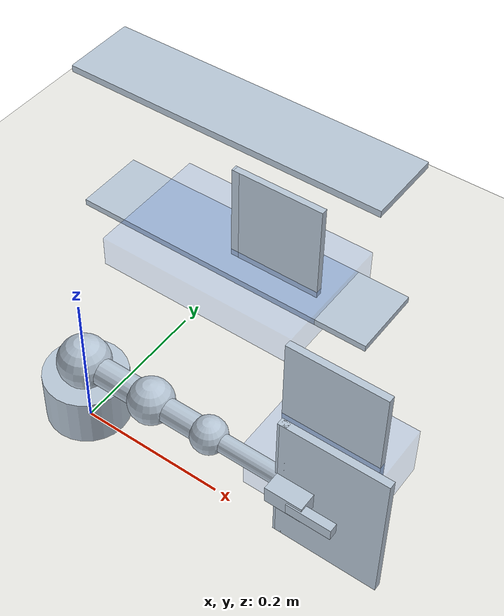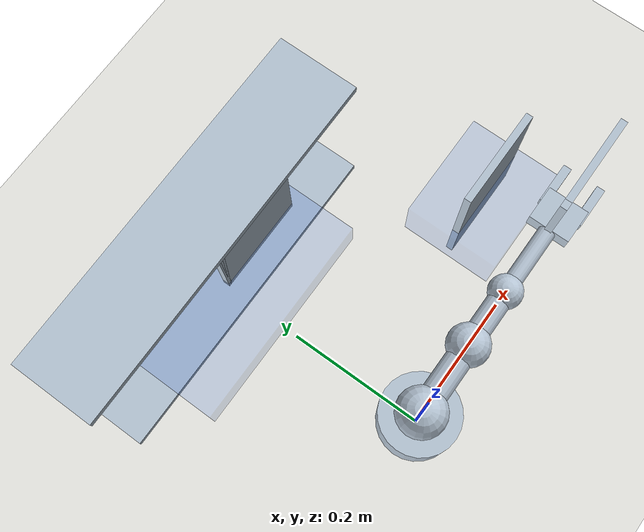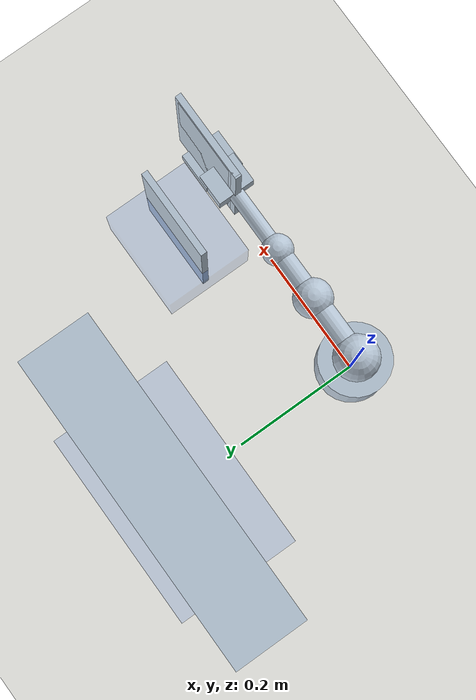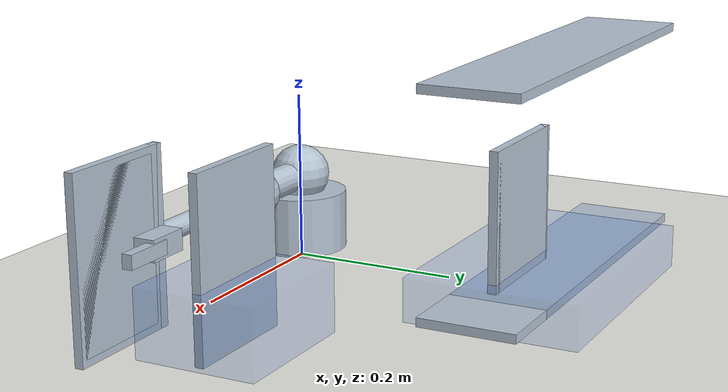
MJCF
<mujoco model="km1_like_arm">
  <compiler angle="degree" coordinate="local"/>

  <option timestep="0.002" gravity="0 0 -9.81"/>

  <default>
    <joint limited="true" damping="0.25" armature="0.01"/>
    <geom contype="1" conaffinity="1" rgba="0.72 0.78 0.84 1"/>
    <site size="0.012" rgba="0.1 0.6 1 1"/>
  </default>

  <asset>
    <material name="base_mat" rgba="0.18 0.20 0.23 1"/>
    <material name="link_a" rgba="0.36 0.62 0.82 1"/>
    <material name="link_b" rgba="0.88 0.70 0.32 1"/>
    <material name="gripper_mat" rgba="0.22 0.22 0.24 1"/>
    <material name="book_mat" rgba="0.78 0.12 0.16 1"/>
    <material name="page_mat" rgba="0.96 0.92 0.78 1"/>
    <material name="shelf_mat" rgba="0.62 0.42 0.24 1"/>
    <material name="workspace_mat" rgba="0.1 0.7 0.3 0.18"/>
  </asset>

  <worldbody>
    <geom name="floor" type="plane" size="0.8 0.8 0.01" rgba="0.92 0.92 0.90 1"/>
    <geom name="return_bin_hint" type="box" pos="0 0.32 0.025" size="0.16 0.10 0.025"
          rgba="0.20 0.42 0.84 0.18" contype="0" conaffinity="0"/>
    <geom name="side_return_bin_hint" type="box" pos="0.30 0.10 0.0385" size="0.08 0.07 0.0385"
          rgba="0.20 0.42 0.84 0.18" contype="0" conaffinity="0"/>
    <geom name="return_book_cover" type="box" pos="0.30 0.10 0.100" euler="0 0 90" size="0.005 0.070 0.100"
          material="book_mat" contype="0" conaffinity="0"/>
    <geom name="return_book_pages" type="box" pos="0.304 0.10 0.100" euler="0 0 90" size="0.004 0.060 0.092"
          material="page_mat" contype="0" conaffinity="0"/>
    <geom name="shelf_platform_low" type="box" pos="0 0.33 0.035" size="0.24 0.055 0.005"
          material="shelf_mat" contype="0" conaffinity="0"/>
    <geom name="shelf_platform_high" type="box" pos="0 0.33 0.275" size="0.24 0.055 0.005"
          material="shelf_mat" contype="0" conaffinity="0"/>
    <body name="base" pos="0 0 0.048">
      <geom name="base_geom" type="cylinder" size="0.055 0.035" material="base_mat"/>
      <joint name="base_yaw" type="hinge" axis="0 0 1" range="-135 135"/>

      <body name="shoulder" pos="0 0 0.055">
        <geom name="shoulder_geom" type="sphere" size="0.035" material="base_mat"/>
        <joint name="shoulder_pitch" type="hinge" axis="0 1 0" range="-120 120"/>
        <geom name="upper_arm" type="capsule" fromto="0 0 0 0.105 0 0" size="0.018" material="link_a"/>

        <body name="elbow" pos="0.105 0 0">
          <geom name="elbow_geom" type="sphere" size="0.030" material="base_mat"/>
          <joint name="elbow_pitch" type="hinge" axis="0 1 0" range="-135 135"/>
          <geom name="forearm" type="capsule" fromto="0 0 0 0.08635 0 0" size="0.016" material="link_b"/>

          <body name="wrist_pitch_body" pos="0.08635 0 0">
            <geom name="wrist_geom" type="sphere" size="0.024" material="base_mat"/>
            <joint name="wrist_pitch" type="hinge" axis="0 1 0" range="-120 120"/>
            <geom name="wrist_link" type="capsule" fromto="0 0 0 0.100 0 0" size="0.012" material="link_a"/>

            <body name="wrist_roll_body" pos="0.100 0 0">
              <joint name="wrist_roll" type="hinge" axis="1 0 0" range="-135 135"/>
              <geom name="gripper_palm" type="box" pos="0.025 0 0" size="0.025 0.030 0.012" material="gripper_mat"/>
              <geom name="left_finger" type="box" pos="0.060 0.026 0" size="0.030 0.006 0.008" material="gripper_mat"/>
              <geom name="right_finger" type="box" pos="0.060 -0.026 0" size="0.030 0.006 0.008" material="gripper_mat"/>
              <geom name="held_book_spine" type="box" pos="0.003 0 0" size="0.006 0.005 0.100"
                    material="book_mat" contype="0" conaffinity="0"/>
              <geom name="held_book_cover" type="box" pos="0.070 0 0" size="0.070 0.005 0.100"
                    material="book_mat" contype="0" conaffinity="0"/>
              <geom name="held_book_pages" type="box" pos="0.074 0.001 0" size="0.060 0.004 0.092"
                    material="page_mat" contype="0" conaffinity="0"/>
              <site name="ee_site" pos="0.025 0 0" euler="0 0 0"/>
            </body>
          </body>
        </body>
      </body>
    </body>

    <body name="placed_book_body" pos="0 0.315 0.095">
      <joint name="placed_book_free" type="free" limited="false" damping="0" armature="0"/>
      <geom name="placed_book_spine" type="box" pos="0.003 0 0" size="0.006 0.005 0.100"
            material="book_mat" contype="0" conaffinity="0"/>
      <geom name="placed_book_cover" type="box" pos="0.070 0 0" size="0.070 0.005 0.100"
            material="book_mat" contype="0" conaffinity="0"/>
      <geom name="placed_book_pages" type="box" pos="0.074 0.001 0" size="0.060 0.004 0.092"
            material="page_mat" contype="0" conaffinity="0"/>
    </body>
  </worldbody>

  <actuator>
    <position name="base_yaw_ctrl" joint="base_yaw" kp="20"/>
    <position name="shoulder_pitch_ctrl" joint="shoulder_pitch" kp="20"/>
    <position name="elbow_pitch_ctrl" joint="elbow_pitch" kp="20"/>
    <position name="wrist_pitch_ctrl" joint="wrist_pitch" kp="10"/>
    <position name="wrist_roll_ctrl" joint="wrist_roll" kp="5"/>
  </actuator>
</mujoco>
